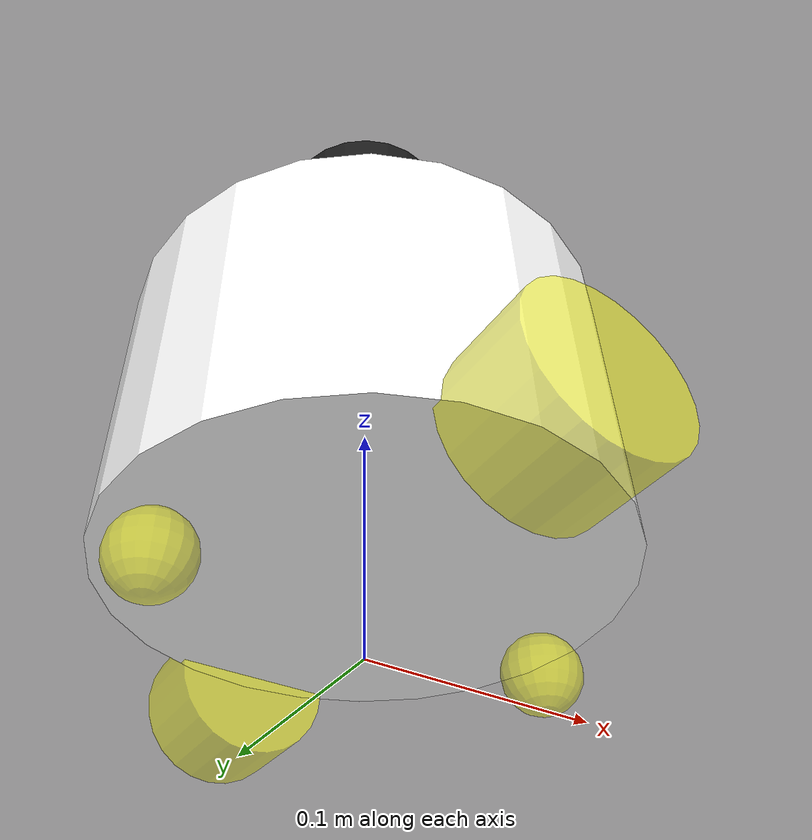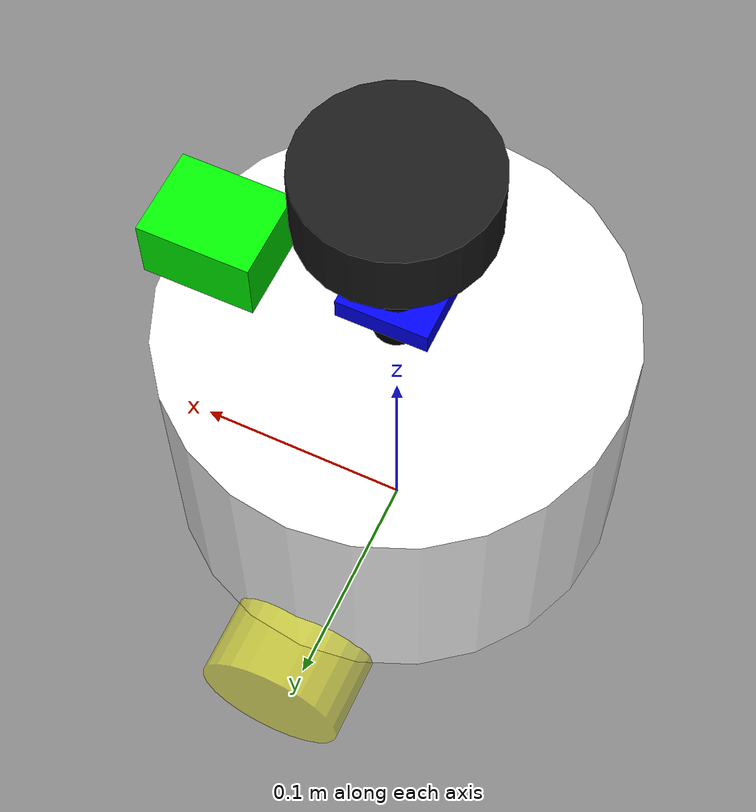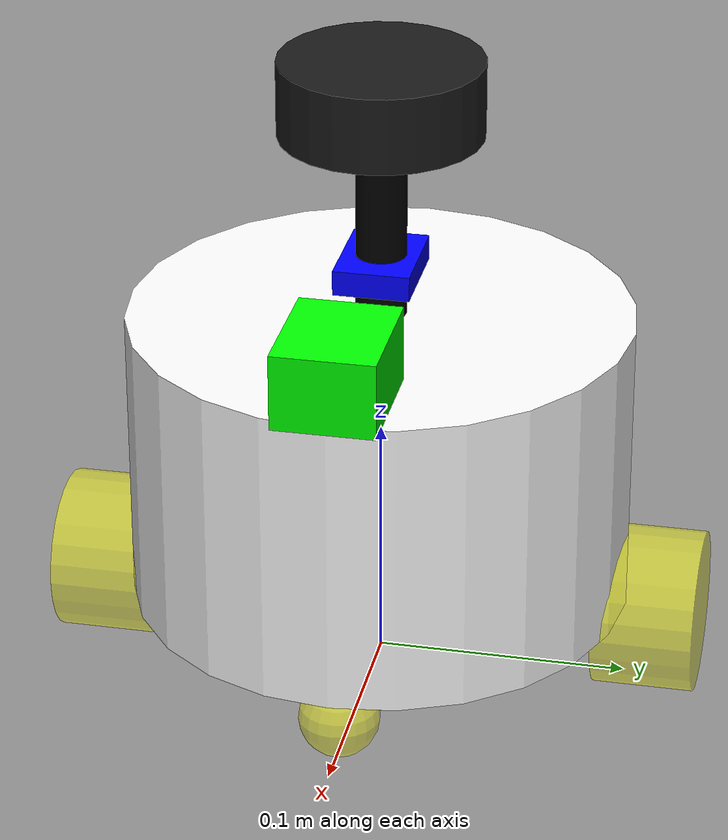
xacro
<?xml version="1.0"?>

<robot xmlns:xacro="http://www.ros.org/wiki/xacro" name="second_robot">
    <xacro:include filename="$(find mybot_description)/urdf/second_robot/base.urdf.xacro"/>
    <xacro:include filename="$(find mybot_description)/urdf/second_robot/sensor/imu.urdf.xacro"/>
    <xacro:include filename="$(find mybot_description)/urdf/second_robot/sensor/laser_link.urdf.xacro"/>
    <xacro:include filename="$(find mybot_description)/urdf/second_robot/sensor/camera.urdf.xacro"/>
    <xacro:include filename="$(find mybot_description)/urdf/second_robot/sensor/caster.urdf.xacro"/>
    <xacro:include filename="$(find mybot_description)/urdf/second_robot/sensor/wheel.urdf.xacro"/>
    <xacro:include filename="$(find mybot_description)/urdf/second_robot/ros2_control.xacro"/>

    <!-- create base -->
    <xacro:base_xacro length="0.12" radius="0.10"/>

    <!-- create IMU -->
    <xacro:imu_xacro xyz="0 0 0.08"/>

    <!-- create laser -->
    <xacro:laser_xacro xyz="0 0 0.10"/>

    <!-- create camera -->
    <xacro:camera_xacro xyz="0.08 0 0.075" rpy="0 0 0"/>

    <!-- create front caster -->
    <xacro:caster_xacro caster_name="front" xyz="0.08 0 -0.076"/>
    <!-- create back caster -->
    <xacro:caster_xacro caster_name="back" xyz="-0.08 0 -0.076"/>

    <!-- create wheels -->
    <xacro:wheel_xacro wheel_name="left" xyz="0 0.11 -0.06"/>
    <xacro:wheel_xacro wheel_name="right" xyz="0 -0.11 -0.06"/>

</robot>

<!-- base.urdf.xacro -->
<robot xmlns:xacro="http://www.ros.org/wiki/xacro">
    <xacro:include filename="$(find mybot_description)/urdf/second_robot/common_inertia.xacro"/>
    <xacro:macro name="base_xacro" params="length radius">
        <link name="base_link">
            <!-- visual -->
            <visual>
                <origin xyz="0 0 0" rpy="0 0 0"/>
                <geometry>
                    <cylinder radius="${radius}" length="${length}"/>
                </geometry>
                <material name="while">
                    <color rgba="1.0 1.0 1.0 1"/>
                </material>
            </visual>

            <!-- collision -->
            <collision>
                <origin xyz="0 0 0" rpy="0 0 0"/>

                <geometry>
                    <cylinder radius="${radius}" length="${length}"/>
                </geometry>
            </collision>

            <!-- inertial -->
            <xacro:cylinder_inertia m="0.5" r="${radius}" h="${length}"/>

        </link>

        <link name="base_footprint"/>
            <joint name="base_joint" type="fixed">
                <parent link="base_footprint"/>
                <child link="base_link"/>
                <origin xyz="0 0 ${length/2.0 + 0.032 - 0.001}" rpy="0 0 0"/>
            </joint>
    </xacro:macro>
</robot>

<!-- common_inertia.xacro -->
<robot xmlns:xacro="http://www.ros.org/wiki/xacro">

    <!-- 长方体 -->
    <xacro:macro name="box_inertia" params="m w h d">
        <inertial>
            <mass value="${m}"/>

            <inertia
                ixx="${(m/12.0) * (h*h + d*d)}"
                ixy="0.0"
                ixz="0.0"

                iyy="${(m/12.0) * (w*w + d*d)}"
                iyz="0.0"

                izz="${(m/12.0) * (w*w + h*h)}"/>
        </inertial>
    </xacro:macro>

    <!-- 圆柱 -->
    <xacro:macro name="cylinder_inertia" params="m r h">
        <inertial>
            <mass value="${m}"/>

            <inertia
                ixx="${(m/12.0) * (3*r*r + h*h)}"
                ixy="0.0"
                ixz="0.0"

                iyy="${(m/12.0) * (3*r*r + h*h)}"
                iyz="0.0"

                izz="${(m/2.0) * r*r}"/>
        </inertial>
    </xacro:macro>

    <!-- 球体 -->
    <xacro:macro name="sphere_inertia" params="m r">
        <inertial>
            <mass value="${m}"/>

            <inertia
                ixx="${(2.0/5.0) * m * r*r}"
                ixy="0.0"
                ixz="0.0"

                iyy="${(2.0/5.0) * m * r*r}"
                iyz="0.0"

                izz="${(2.0/5.0) * m * r*r}"/>
        </inertial>
    </xacro:macro>

</robot>

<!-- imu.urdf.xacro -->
<robot xmlns:xacro="http://www.ros.org/wiki/xacro">
    <xacro:macro name="imu_xacro" params="xyz">
        <link name="imu_link">
            <visual>
                <origin xyz="0 0 0" rpy="0 0 0"/>
                <geometry>
                    <box size="0.04 0.03 0.01"/>
                </geometry>

                <material name="imu_blue">
                    <color rgba="0 0 1 1"/>
                </material>

            </visual>
        </link>

        <joint name="imu_joint" type="fixed">
            <parent link="base_link"/>
            <child link="imu_link"/>
            <origin xyz="${xyz}" rpy="0 0 0"/>
        </joint>

        <gazebo reference="imu_link">
            <sensor name="imu_sensor" type="imu">
                <always_on>true</always_on>
                <update_rate>50</update_rate>
                <topic>imu</topic>
            </sensor>
        </gazebo>

    </xacro:macro>
</robot>

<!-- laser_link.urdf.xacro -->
<robot xmlns:xacro="http://www.ros.org/wiki/xacro">
    <xacro:include filename="$(find mybot_description)/urdf/second_robot/common_inertia.xacro"/>
    <xacro:macro name="laser_xacro" params="xyz">
        <!-- laser link -->
        <link name="laser_link">
            <visual>
                <origin xyz="0 0 0" rpy="0 0 0"/>
                <geometry>
                    <cylinder radius="0.04" length="0.03"/>
                </geometry>
                <material name="laser_black">
                    <color rgba = "0.1 0.1 0.1 1"/>
                </material>
            </visual>

                <collision>
                    <origin xyz="0 0 0" rpy="0 0 0"/>
                    <geometry>
                        <cylinder radius="0.04" length="0.03"/>
                    </geometry>
                </collision>

                <xacro:cylinder_inertia m="0.3" r="0.04" h="0.03"/>

        </link>

        <link name="laser_cylinder_link">
            <visual>
                <origin xyz="0.0 0.0 0.0" rpy="0.0 0.0 0.0"/>
                <geometry>
                    <cylinder radius="0.01" length="0.10"/>
                </geometry>
                <material name="black">
                    <color rgba="0.0 0.0 0.0 1.0"/>
                </material>
            </visual>

            <collision>
                <origin xyz="0 0 0" rpy="0 0 0"/>
                <geometry>
                    <cylinder radius="0.01" length="0.10"/>
                </geometry>
            </collision>

            <xacro:cylinder_inertia m="0.3" r="0.01" h="0.10"/>

        </link>

        <joint name="laser_joint" type="fixed">
            <parent link="base_link"/>
            <child link="laser_cylinder_link"/>
            <origin xyz="${xyz}" rpy="0 0 0"/>
        </joint>

        <joint name="laser_cylinder_joint" type="fixed">
            <origin xyz="0.0 0.0 0.05" rpy="0.0 0.0 0.0"/>
            <parent link="laser_cylinder_link"/>
            <child link="laser_link"/>
        </joint>

        <gazebo reference="laser_link">
            <sensor name="laser_sensor" type="gpu_lidar">
                <always_on>true</always_on>
                <update_rate>10</update_rate>
                <topic>scan</topic>
                <gz_frame_id>laser_link</gz_frame_id>
                <visualize>true</visualize>

                <lidar>
                    <scan>
                        <horizontal>
                            <samples>360</samples>
                            <resolution>1</resolution>
                            <min_angle>-3.14159</min_angle>
                            <max_angle>3.14159</max_angle>
                        </horizontal>
                    </scan>

                    <range>
                        <min>0.10</min>
                        <max>10.0</max>
                        <resolution>0.01</resolution>
                    </range>

                </lidar>
            </sensor>
        </gazebo>
    </xacro:macro>
</robot>

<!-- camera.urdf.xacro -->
<robot xmlns:xacro="http://www.ros.org/wiki/xacro">
    <xacro:include filename="$(find mybot_description)/urdf/second_robot/common_inertia.xacro"/>
    <xacro:macro name="camera_xacro" params="xyz rpy">
        <link name="camera_link">
            <visual>
                <origin xyz="0 0 0" rpy="0 0 0"/>
                <geometry>
                    <box size="0.05 0.04 0.03"/>
                </geometry>

                <material name="camera_green">
                    <color rgba="0 1 0 1"/>
                </material>
            </visual>

            <collision>
                <origin xyz="0 0 0" rpy="0 0 0"/>

                <geometry>
                    <box size="0.05 0.04 0.03"/>
                </geometry>
            </collision>

            <xacro:box_inertia m="0.05" w="0.05" h="0.04" d="0.03"/>

        </link>

        <joint name="camera_joint" type="fixed">
            <parent link="base_link"/>
            <child link="camera_link"/>
            <origin xyz="${xyz}" rpy="${rpy}"/>

        </joint>

        <gazebo reference="camera_link">
            <sensor name="camera_sensor" type="rgbd_camera">
                <always_on>true</always_on>
                <update_rate>30</update_rate>
                <topic>/camera</topic>
                <camera>
                    <horizontal_fov>1.047</horizontal_fov>

                    <image>
                        <width>640</width>
                        <height>480</height>
                    </image>

                    <clip>
                        <near>0.1</near>
                        <far>10.0</far>
                    </clip>

                </camera>
            </sensor>
        </gazebo>
    </xacro:macro>
</robot>

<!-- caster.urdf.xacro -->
<robot xmlns:xacro="http://www.ros.org/wiki/xacro">
    <xacro:include filename="$(find mybot_description)/urdf/second_robot/common_inertia.xacro"/>
    <xacro:macro name="caster_xacro" params="caster_name xyz">
        <link name="${caster_name}_link">
            <visual>
                <origin xyz="0 0 0" rpy="0 0 0"/>

                <geometry>
                    <sphere radius="0.016"/>
                </geometry>

                <material name="yellow">
                    <color rgba="1 1 0 0.5"/>
                </material>
            </visual>

            <collision>
                <origin xyz="0 0 0" rpy="0 0 0"/>

                <geometry>
                    <sphere radius="0.016"/>
                </geometry>
            </collision>

            <xacro:sphere_inertia m="0.05" r="0.016"/>
        </link>

        <joint name="${caster_name}_joint" type="fixed">
            <parent link="base_link"/>
            <child link="${caster_name}_link"/>
            <origin xyz="${xyz}" rpy="0 0 0"/>
        </joint>

        <gazebo reference="${caster_name}_link">
            <mu1>0.0</mu1>
            <mu2>0.0</mu2>
            <kp>1000000000.0</kp>
            <kd>1.0</kd>
        </gazebo>
    </xacro:macro>
</robot>

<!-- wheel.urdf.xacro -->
<robot xmlns:xacro="http://www.ros.org/wiki/xacro">
    <xacro:include filename="$(find mybot_description)/urdf/second_robot/common_inertia.xacro"/>
    <xacro:macro name="wheel_xacro" params="wheel_name xyz">
        <link name="${wheel_name}_link">
            <visual>
                <origin xyz="0 0 0" rpy="1.5708 0 0"/>
                <geometry>
                    <cylinder radius="0.032" length="0.04"/>
                </geometry>

                <material name="yellow">
                    <color rgba="1 1 0 0.5"/>
                </material>
            </visual>

        <!-- add collision -->
            <collision>
                <origin xyz="0 0 0" rpy="1.5708 0 0"/>
                <geometry>
                    <cylinder radius="0.032" length="0.04"/>
                </geometry>
            </collision>

        <inertial>
    <mass value="0.05"/>

    <inertia
            ixx="${(0.05/12.0) * (3*0.032*0.032 + 0.04*0.04)}"
            ixy="0.0"
            ixz="0.0"

            iyy="${(0.05/2.0) * 0.032*0.032}"
            iyz="0.0"

            izz="${(0.05/12.0) * (3*0.032*0.032 + 0.04*0.04)}"/>
    </inertial>

        </link>

        <joint name="${wheel_name}_joint" type="continuous">
            <parent link="base_link"/>
            <child link="${wheel_name}_link"/>
            <origin xyz="${xyz}" rpy="0 0 0"/>
            <axis xyz="0 1 0"/>
        </joint>

    </xacro:macro>
</robot>
